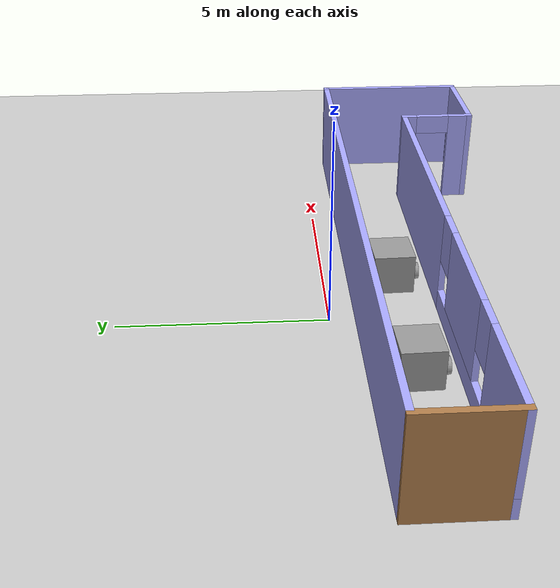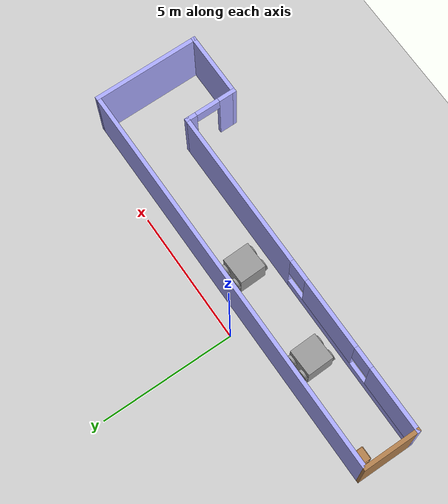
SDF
<sdf version="1.6">
 <world name="default">
  <plugin name="welcome_message" filename="libwelcome_message.so"/>
  <light name="sun" type="directional">
   <pose>0 0 10 0 -0 0</pose>
   <diffuse>0.8 0.8 0.8 1</diffuse>
   <specular>0.1 0.1 0.1 1</specular>
   <attenuation>
    <range>1000</range>
    <constant>0.9</constant>
    <linear>0.01</linear>
    <quadratic>0.001</quadratic>
   </attenuation>
   <direction>-0.5 0.5 -1</direction>
  </light>
  <model name="ground_plane">
   <static>1</static>
   <link name="link">
    <collision name="collision">
     <geometry><plane><normal>0 0 1</normal><size>100 100</size></plane></geometry>
     <surface><friction><ode><mu>100</mu><mu2>50</mu2></ode></friction></surface>
    </collision>
    <visual name="visual">
     <cast_shadows>0</cast_shadows>
     <geometry><plane><normal>0 0 1</normal><size>100 100</size></plane></geometry>
     <material>
      <script><uri>file://media/materials/scripts/gazebo.material</uri><name>Gazebo/Grey</name></script>
     </material>
    </visual>
   </link>
  </model>
  <gravity>0 0 -9.8</gravity>
  <magnetic_field>6e-06 2.3e-05 -4.2e-05</magnetic_field>
  <atmosphere type="adiabatic"/>
  <physics name="default_physics" default="0" type="ode">
   <max_step_size>0.001</max_step_size>
   <real_time_factor>1</real_time_factor>
   <real_time_update_rate>1000</real_time_update_rate>
  </physics>
  <scene><ambient>0.4 0.4 0.4 1</ambient><background>0.7 0.7 0.7 1</background><shadows>1</shadows></scene>
  <spherical_coordinates>
   <surface_model>EARTH_WGS84</surface_model>
   <latitude_deg>0</latitude_deg>
   <longitude_deg>0</longitude_deg>
   <elevation>0</elevation>
   <heading_deg>0</heading_deg>
  </spherical_coordinates>
  <model name="building">
   <pose>1.23203 -2.6019 0 0 -0 0</pose>
   <link name="Wall_0">
    <collision name="Wall_0_Collision">
     <geometry><box><size>15 0.15 2.5</size></box></geometry>
     <pose>0 0 1.25 0 -0 0</pose>
    </collision>
    <visual name="Wall_0_Visual">
     <pose>0 0 1.25 0 -0 0</pose>
     <geometry><box><size>15 0.15 2.5</size></box></geometry>
     <material>
      <script><uri>file://media/materials/scripts/gazebo.material</uri><name>Gazebo/Grey</name></script>
      <ambient>0.666667 0.666667 1 1</ambient>
     </material>
     <meta><layer>0</layer></meta>
    </visual>
    <pose>0.049935 1.925 0 0 -0 0</pose>
   </link>
   <link name="Wall_1">
    <collision name="Wall_1_Collision">
     <geometry><box><size>4 0.15 2.5</size></box></geometry>
     <pose>0 0 1.25 0 -0 0</pose>
    </collision>
    <visual name="Wall_1_Visual">
     <pose>0 0 1.25 0 -0 0</pose>
     <geometry><box><size>4 0.15 2.5</size></box></geometry>
     <material>
      <script><uri>file://media/materials/scripts/gazebo.material</uri><name>Gazebo/Grey</name></script>
      <ambient>0.666667 0.666667 1 1</ambient>
     </material>
     <meta><layer>0</layer></meta>
    </visual>
    <pose>7.47494 0 0 0 0 -1.5708</pose>
   </link>
   <link name="Wall_2">
    <collision name="Wall_2_Collision">
     <geometry><box><size>2.5 0.15 2.5</size></box></geometry>
     <pose>0 0 1.25 0 -0 0</pose>
    </collision>
    <visual name="Wall_2_Visual">
     <pose>0 0 1.25 0 -0 0</pose>
     <geometry><box><size>2.5 0.15 2.5</size></box></geometry>
     <material>
      <script><uri>file://media/materials/scripts/gazebo.material</uri><name>Gazebo/Grey</name></script>
      <ambient>0.666667 0.666667 1 1</ambient>
     </material>
     <meta><layer>0</layer></meta>
    </visual>
    <pose>6.29993 -1.925 0 0 -0 3.14159</pose>
   </link>
   <link name="Wall_3">
    <pose>5.12493 -1 0 0 -0 1.5708</pose>
    <visual name="Wall_3_Visual_0">
     <pose>-0.661705 0 1.25 0 -0 0</pose>
     <geometry><box><size>0.67659 0.15 2.5</size></box></geometry>
     <material>
      <script><uri>file://media/materials/scripts/gazebo.material</uri><name>Gazebo/Grey</name></script>
      <ambient>0.666667 0.666667 1 1</ambient>
     </material>
     <meta><layer>0</layer></meta>
    </visual>
    <collision name="Wall_3_Collision_0">
     <geometry><box><size>0.67659 0.15 2.5</size></box></geometry>
     <pose>-0.661705 0 1.25 0 -0 0</pose>
    </collision>
    <visual name="Wall_3_Visual_1">
     <pose>0.788295 0 1.25 0 -0 0</pose>
     <geometry><box><size>0.42341 0.15 2.5</size></box></geometry>
     <material>
      <script><uri>file://media/materials/scripts/gazebo.material</uri><name>Gazebo/Grey</name></script>
      <ambient>0.666667 0.666667 1 1</ambient>
     </material>
     <meta><layer>0</layer></meta>
    </visual>
    <collision name="Wall_3_Collision_1">
     <geometry><box><size>0.42341 0.15 2.5</size></box></geometry>
     <pose>0.788295 0 1.25 0 -0 0</pose>
    </collision>
    <visual name="Wall_3_Visual_2">
     <pose>0.12659 0 2.25 0 -0 0</pose>
     <geometry><box><size>0.9 0.15 0.5</size></box></geometry>
     <material>
      <script><uri>file://media/materials/scripts/gazebo.material</uri><name>Gazebo/Grey</name></script>
      <ambient>0.666667 0.666667 1 1</ambient>
     </material>
     <meta><layer>0</layer></meta>
    </visual>
    <collision name="Wall_3_Collision_2">
     <geometry><box><size>0.9 0.15 0.5</size></box></geometry>
     <pose>0.12659 0 2.25 0 -0 0</pose>
    </collision>
   </link>
   <link name="Wall_4">
    <pose>-1.17494 -0.075034 0 0 0 -3.14159</pose>
    <visual name="Wall_4_Visual_0">
     <pose>-3.352 0 1.25 0 -0 0</pose>
     <geometry><box><size>6.046 0.15 2.5</size></box></geometry>
     <material>
      <script><uri>file://media/materials/scripts/gazebo.material</uri><name>Gazebo/Grey</name></script>
      <ambient>0.666667 0.666667 1 1</ambient>
     </material>
     <meta><layer>0</layer></meta>
    </visual>
    <collision name="Wall_4_Collision_0">
     <geometry><box><size>6.046 0.15 2.5</size></box></geometry>
     <pose>-3.352 0 1.25 0 -0 0</pose>
    </collision>
    <visual name="Wall_4_Visual_1">
     <pose>3.023 0 0.25 0 -0 0</pose>
     <geometry><box><size>6.704 0.15 0.5</size></box></geometry>
     <material>
      <script><uri>file://media/materials/scripts/gazebo.material</uri><name>Gazebo/Grey</name></script>
      <ambient>0.666667 0.666667 1 1</ambient>
     </material>
     <meta><layer>0</layer></meta>
    </visual>
    <collision name="Wall_4_Collision_1">
     <geometry><box><size>6.704 0.15 0.5</size></box></geometry>
     <pose>3.023 0 0.25 0 -0 0</pose>
    </collision>
    <visual name="Wall_4_Visual_2">
     <pose>1.7972 0 1.5 0 -0 0</pose>
     <geometry><box><size>2.65239 0.15 2</size></box></geometry>
     <material>
      <script><uri>file://media/materials/scripts/gazebo.material</uri><name>Gazebo/Grey</name></script>
      <ambient>0.666667 0.666667 1 1</ambient>
     </material>
     <meta><layer>0</layer></meta>
    </visual>
    <collision name="Wall_4_Collision_2">
     <geometry><box><size>2.65239 0.15 2</size></box></geometry>
     <pose>1.7972 0 1.5 0 -0 0</pose>
    </collision>
    <visual name="Wall_4_Visual_3">
     <pose>5.14919 0 1.5 0 -0 0</pose>
     <geometry><box><size>2.45161 0.15 2</size></box></geometry>
     <material>
      <script><uri>file://media/materials/scripts/gazebo.material</uri><name>Gazebo/Grey</name></script>
      <ambient>0.666667 0.666667 1 1</ambient>
     </material>
     <meta><layer>0</layer></meta>
    </visual>
    <collision name="Wall_4_Collision_3">
     <geometry><box><size>2.45161 0.15 2</size></box></geometry>
     <pose>5.14919 0 1.5 0 -0 0</pose>
    </collision>
    <visual name="Wall_4_Visual_4">
     <pose>0.071004 0 1.9 0 -0 0</pose>
     <geometry><box><size>0.8 0.15 1.2</size></box></geometry>
     <material>
      <script><uri>file://media/materials/scripts/gazebo.material</uri><name>Gazebo/Grey</name></script>
      <ambient>0.666667 0.666667 1 1</ambient>
     </material>
     <meta><layer>0</layer></meta>
    </visual>
    <collision name="Wall_4_Collision_4">
     <geometry><box><size>0.8 0.15 1.2</size></box></geometry>
     <pose>0.071004 0 1.9 0 -0 0</pose>
    </collision>
    <visual name="Wall_4_Visual_5">
     <pose>3.52339 0 1.9 0 -0 0</pose>
     <geometry><box><size>0.8 0.15 1.2</size></box></geometry>
     <material>
      <script><uri>file://media/materials/scripts/gazebo.material</uri><name>Gazebo/Grey</name></script>
      <ambient>0.666667 0.666667 1 1</ambient>
     </material>
     <meta><layer>0</layer></meta>
    </visual>
    <collision name="Wall_4_Collision_5">
     <geometry><box><size>0.8 0.15 1.2</size></box></geometry>
     <pose>3.52339 0 1.9 0 -0 0</pose>
    </collision>
   </link>
   <link name="Wall_5">
    <collision name="Wall_5_Collision">
     <geometry><box><size>2.148 0.15 2.5</size></box></geometry>
     <pose>0 0 1.25 0 -0 0</pose>
    </collision>
    <visual name="Wall_5_Visual">
     <pose>0 0 1.25 0 -0 0</pose>
     <geometry><box><size>2.148 0.15 2.5</size></box></geometry>
     <material>
      <script><uri>file://media/materials/scripts/gazebo.material</uri><name>Gazebo/Wood</name></script>
      <ambient>1 1 1 1</ambient>
     </material>
     <meta><layer>0</layer></meta>
    </visual>
    <pose>-7.4748 0.923933 0 0 -0 1.5708</pose>
   </link>
   <static>1</static>
  </model>
  <model name="model">
   <link name="link_0">
    <inertial>
     <mass>1</mass>
     <inertia>
      <ixx>0.166667</ixx>
      <ixy>0</ixy>
      <ixz>0</ixz>
      <iyy>0.166667</iyy>
      <iyz>0</iyz>
      <izz>0.166667</izz>
     </inertia>
    </inertial>
    <visual name="visual">
     <geometry><box><size>1 1 1</size></box></geometry>
     <material>
      <lighting>1</lighting>
      <script><uri>file://media/materials/scripts/gazebo.material</uri><name>Gazebo/Grey</name></script>
      <shader type="pixel"><normal_map>__default__</normal_map></shader>
      <ambient>0.3 0.3 0.3 1</ambient>
      <diffuse>0.7 0.7 0.7 1</diffuse>
      <specular>0.01 0.01 0.01 1</specular>
      <emissive>0 0 0 1</emissive>
     </material>
    </visual>
    <collision name="collision">
     <geometry><box><size>1 1 1</size></box></geometry>
     <surface>
      <friction>
       <ode><mu>1</mu><mu2>1</mu2><fdir1>0 0 0</fdir1><slip1>0</slip1><slip2>0</slip2></ode>
       <torsional>
        <coefficient>1</coefficient>
        <patch_radius>0</patch_radius>
        <surface_radius>0</surface_radius>
        <use_patch_radius>1</use_patch_radius>
        <ode><slip>0</slip></ode>
       </torsional>
      </friction>
      <bounce><restitution_coefficient>0</restitution_coefficient><threshold>1e+06</threshold></bounce>
      <contact>
       <collide_without_contact>0</collide_without_contact>
       <collide_without_contact_bitmask>1</collide_without_contact_bitmask>
       <collide_bitmask>1</collide_bitmask>
       <ode>
        <soft_cfm>0</soft_cfm>
        <soft_erp>0.2</soft_erp>
        <kp>1e+13</kp>
        <kd>1</kd>
        <max_vel>0.01</max_vel>
        <min_depth>0</min_depth>
       </ode>
       <bullet>
        <split_impulse>1</split_impulse>
        <split_impulse_penetration_threshold>-0.01</split_impulse_penetration_threshold>
        <soft_cfm>0</soft_cfm>
        <soft_erp>0.2</soft_erp>
        <kp>1e+13</kp>
        <kd>1</kd>
       </bullet>
      </contact>
     </surface>
    </collision>
   </link>
   <link name="link_1">
    <pose>0.3 -0.550019 0 1.5707 -0 0</pose>
    <inertial>
     <mass>1</mass>
     <inertia><ixx>0.145833</ixx><ixy>0</ixy><ixz>0</ixz><iyy>0.145833</iyy><iyz>0</iyz><izz>0.125</izz></inertia>
    </inertial>
    <visual name="visual">
     <geometry><cylinder><radius>0.2</radius><length>0.1</length></cylinder></geometry>
     <material>
      <lighting>1</lighting>
      <script><uri>file://media/materials/scripts/gazebo.material</uri><name>Gazebo/Grey</name></script>
      <shader type="pixel"><normal_map>__default__</normal_map></shader>
      <ambient>0.3 0.3 0.3 1</ambient>
      <diffuse>0.7 0.7 0.7 1</diffuse>
      <specular>0.01 0.01 0.01 1</specular>
      <emissive>0 0 0 1</emissive>
     </material>
    </visual>
    <collision name="collision">
     <geometry><cylinder><radius>0.2</radius><length>0.1</length></cylinder></geometry>
     <surface>
      <friction>
       <ode><mu>1</mu><mu2>1</mu2><fdir1>0 0 0</fdir1><slip1>0</slip1><slip2>0</slip2></ode>
       <torsional>
        <coefficient>1</coefficient>
        <patch_radius>0</patch_radius>
        <surface_radius>0</surface_radius>
        <use_patch_radius>1</use_patch_radius>
        <ode><slip>0</slip></ode>
       </torsional>
      </friction>
      <bounce><restitution_coefficient>0</restitution_coefficient><threshold>1e+06</threshold></bounce>
      <contact>
       <collide_without_contact>0</collide_without_contact>
       <collide_without_contact_bitmask>1</collide_without_contact_bitmask>
       <collide_bitmask>1</collide_bitmask>
       <ode>
        <soft_cfm>0</soft_cfm>
        <soft_erp>0.2</soft_erp>
        <kp>1e+13</kp>
        <kd>1</kd>
        <max_vel>0.01</max_vel>
        <min_depth>0</min_depth>
       </ode>
       <bullet>
        <split_impulse>1</split_impulse>
        <split_impulse_penetration_threshold>-0.01</split_impulse_penetration_threshold>
        <soft_cfm>0</soft_cfm>
        <soft_erp>0.2</soft_erp>
        <kp>1e+13</kp>
        <kd>1</kd>
       </bullet>
      </contact>
     </surface>
    </collision>
   </link>
   <link name="link_1_clone">
    <pose>-0.3 -0.550019 0 1.5707 -0 0</pose>
    <inertial>
     <mass>1</mass>
     <inertia><ixx>0.145833</ixx><ixy>0</ixy><ixz>0</ixz><iyy>0.145833</iyy><iyz>0</iyz><izz>0.125</izz></inertia>
    </inertial>
    <visual name="visual">
     <geometry><cylinder><radius>0.2</radius><length>0.1</length></cylinder></geometry>
     <material>
      <lighting>1</lighting>
      <script><uri>file://media/materials/scripts/gazebo.material</uri><name>Gazebo/Grey</name></script>
      <shader type="pixel"><normal_map>__default__</normal_map></shader>
      <ambient>0.3 0.3 0.3 1</ambient>
      <diffuse>0.7 0.7 0.7 1</diffuse>
      <specular>0.01 0.01 0.01 1</specular>
      <emissive>0 0 0 1</emissive>
     </material>
    </visual>
    <collision name="collision">
     <geometry><cylinder><radius>0.2</radius><length>0.1</length></cylinder></geometry>
     <surface>
      <friction>
       <ode><mu>1</mu><mu2>1</mu2><fdir1>0 0 0</fdir1><slip1>0</slip1><slip2>0</slip2></ode>
       <torsional>
        <coefficient>1</coefficient>
        <patch_radius>0</patch_radius>
        <surface_radius>0</surface_radius>
        <use_patch_radius>1</use_patch_radius>
        <ode><slip>0</slip></ode>
       </torsional>
      </friction>
      <bounce><restitution_coefficient>0</restitution_coefficient><threshold>1e+06</threshold></bounce>
      <contact>
       <collide_without_contact>0</collide_without_contact>
       <collide_without_contact_bitmask>1</collide_without_contact_bitmask>
       <collide_bitmask>1</collide_bitmask>
       <ode>
        <soft_cfm>0</soft_cfm>
        <soft_erp>0.2</soft_erp>
        <kp>1e+13</kp>
        <kd>1</kd>
        <max_vel>0.01</max_vel>
        <min_depth>0</min_depth>
       </ode>
       <bullet>
        <split_impulse>1</split_impulse>
        <split_impulse_penetration_threshold>-0.01</split_impulse_penetration_threshold>
        <soft_cfm>0</soft_cfm>
        <soft_erp>0.2</soft_erp>
        <kp>1e+13</kp>
        <kd>1</kd>
       </bullet>
      </contact>
     </surface>
    </collision>
   </link>
   <link name="link_1_clone_0">
    <pose>-0.3 0.550019 0 1.5707 -0 0</pose>
    <inertial>
     <mass>1</mass>
     <inertia><ixx>0.145833</ixx><ixy>0</ixy><ixz>0</ixz><iyy>0.145833</iyy><iyz>0</iyz><izz>0.125</izz></inertia>
    </inertial>
    <visual name="visual">
     <geometry><cylinder><radius>0.2</radius><length>0.1</length></cylinder></geometry>
     <material>
      <lighting>1</lighting>
      <script><uri>file://media/materials/scripts/gazebo.material</uri><name>Gazebo/Grey</name></script>
      <shader type="pixel"><normal_map>__default__</normal_map></shader>
      <ambient>0.3 0.3 0.3 1</ambient>
      <diffuse>0.7 0.7 0.7 1</diffuse>
      <specular>0.01 0.01 0.01 1</specular>
      <emissive>0 0 0 1</emissive>
     </material>
    </visual>
    <collision name="collision">
     <geometry><cylinder><radius>0.2</radius><length>0.1</length></cylinder></geometry>
     <surface>
      <friction>
       <ode><mu>1</mu><mu2>1</mu2><fdir1>0 0 0</fdir1><slip1>0</slip1><slip2>0</slip2></ode>
       <torsional>
        <coefficient>1</coefficient>
        <patch_radius>0</patch_radius>
        <surface_radius>0</surface_radius>
        <use_patch_radius>1</use_patch_radius>
        <ode><slip>0</slip></ode>
       </torsional>
      </friction>
      <bounce><restitution_coefficient>0</restitution_coefficient><threshold>1e+06</threshold></bounce>
      <contact>
       <collide_without_contact>0</collide_without_contact>
       <collide_without_contact_bitmask>1</collide_without_contact_bitmask>
       <collide_bitmask>1</collide_bitmask>
       <ode>
        <soft_cfm>0</soft_cfm>
        <soft_erp>0.2</soft_erp>
        <kp>1e+13</kp>
        <kd>1</kd>
        <max_vel>0.01</max_vel>
        <min_depth>0</min_depth>
       </ode>
       <bullet>
        <split_impulse>1</split_impulse>
        <split_impulse_penetration_threshold>-0.01</split_impulse_penetration_threshold>
        <soft_cfm>0</soft_cfm>
        <soft_erp>0.2</soft_erp>
        <kp>1e+13</kp>
        <kd>1</kd>
       </bullet>
      </contact>
     </surface>
    </collision>
   </link>
   <link name="link_1_clone_1">
    <pose>0.3 0.550019 0 1.5707 -0 0</pose>
    <inertial>
     <mass>1</mass>
     <inertia><ixx>0.145833</ixx><ixy>0</ixy><ixz>0</ixz><iyy>0.145833</iyy><iyz>0</iyz><izz>0.125</izz></inertia>
    </inertial>
    <visual name="visual">
     <geometry><cylinder><radius>0.2</radius><length>0.1</length></cylinder></geometry>
     <material>
      <lighting>1</lighting>
      <script><uri>file://media/materials/scripts/gazebo.material</uri><name>Gazebo/Grey</name></script>
      <shader type="pixel"><normal_map>__default__</normal_map></shader>
      <ambient>0.3 0.3 0.3 1</ambient>
      <diffuse>0.7 0.7 0.7 1</diffuse>
      <specular>0.01 0.01 0.01 1</specular>
      <emissive>0 0 0 1</emissive>
     </material>
    </visual>
    <collision name="collision">
     <geometry><cylinder><radius>0.2</radius><length>0.1</length></cylinder></geometry>
     <surface>
      <friction>
       <ode><mu>1</mu><mu2>1</mu2><fdir1>0 0 0</fdir1><slip1>0</slip1><slip2>0</slip2></ode>
       <torsional>
        <coefficient>1</coefficient>
        <patch_radius>0</patch_radius>
        <surface_radius>0</surface_radius>
        <use_patch_radius>1</use_patch_radius>
        <ode><slip>0</slip></ode>
       </torsional>
      </friction>
      <bounce><restitution_coefficient>0</restitution_coefficient><threshold>1e+06</threshold></bounce>
      <contact>
       <collide_without_contact>0</collide_without_contact>
       <collide_without_contact_bitmask>1</collide_without_contact_bitmask>
       <collide_bitmask>1</collide_bitmask>
       <ode>
        <soft_cfm>0</soft_cfm>
        <soft_erp>0.2</soft_erp>
        <kp>1e+13</kp>
        <kd>1</kd>
        <max_vel>0.01</max_vel>
        <min_depth>0</min_depth>
       </ode>
       <bullet>
        <split_impulse>1</split_impulse>
        <split_impulse_penetration_threshold>-0.01</split_impulse_penetration_threshold>
        <soft_cfm>0</soft_cfm>
        <soft_erp>0.2</soft_erp>
        <kp>1e+13</kp>
        <kd>1</kd>
       </bullet>
      </contact>
     </surface>
    </collision>
   </link>
   <joint name="link_0_JOINT_0" type="revolute">
    <parent>link_0</parent>
    <child>link_1_clone</child>
    <axis>
     <xyz>0 0 1</xyz>
     <use_parent_model_frame>0</use_parent_model_frame>
     <limit>
      <lower>-1.79769e+308</lower>
      <upper>1.79769e+308</upper>
      <effort>-1</effort>
      <velocity>-1</velocity>
     </limit>
     <dynamics>
      <spring_reference>0</spring_reference>
      <spring_stiffness>0</spring_stiffness>
      <damping>0</damping>
     </dynamics>
    </axis>
    <physics>
     <ode><limit><cfm>0</cfm><erp>0.2</erp></limit><suspension><cfm>0</cfm><erp>0.2</erp></suspension></ode>
    </physics>
   </joint>
   <joint name="link_0_JOINT_1" type="revolute">
    <parent>link_0</parent>
    <child>link_1</child>
    <axis>
     <xyz>0 0 1</xyz>
     <use_parent_model_frame>0</use_parent_model_frame>
     <limit>
      <lower>-1.79769e+308</lower>
      <upper>1.79769e+308</upper>
      <effort>-1</effort>
      <velocity>-1</velocity>
     </limit>
     <dynamics>
      <spring_reference>0</spring_reference>
      <spring_stiffness>0</spring_stiffness>
      <damping>0</damping>
     </dynamics>
    </axis>
    <physics>
     <ode><limit><cfm>0</cfm><erp>0.2</erp></limit><suspension><cfm>0</cfm><erp>0.2</erp></suspension></ode>
    </physics>
   </joint>
   <joint name="link_0_JOINT_2" type="revolute">
    <parent>link_0</parent>
    <child>link_1_clone_0</child>
    <axis>
     <xyz>0 0 1</xyz>
     <use_parent_model_frame>0</use_parent_model_frame>
     <limit>
      <lower>-1.79769e+308</lower>
      <upper>1.79769e+308</upper>
      <effort>-1</effort>
      <velocity>-1</velocity>
     </limit>
     <dynamics>
      <spring_reference>0</spring_reference>
      <spring_stiffness>0</spring_stiffness>
      <damping>0</damping>
     </dynamics>
    </axis>
    <physics>
     <ode><limit><cfm>0</cfm><erp>0.2</erp></limit><suspension><cfm>0</cfm><erp>0.2</erp></suspension></ode>
    </physics>
   </joint>
   <joint name="link_0_JOINT_3" type="revolute">
    <parent>link_0</parent>
    <child>link_1_clone_1</child>
    <axis>
     <xyz>0 0 1</xyz>
     <use_parent_model_frame>0</use_parent_model_frame>
     <limit>
      <lower>-1.79769e+308</lower>
      <upper>1.79769e+308</upper>
      <effort>-1</effort>
      <velocity>-1</velocity>
     </limit>
     <dynamics>
      <spring_reference>0</spring_reference>
      <spring_stiffness>0</spring_stiffness>
      <damping>0</damping>
     </dynamics>
    </axis>
    <physics>
     <ode><limit><cfm>0</cfm><erp>0.2</erp></limit><suspension><cfm>0</cfm><erp>0.2</erp></suspension></ode>
    </physics>
   </joint>
   <static>0</static>
   <pose>-2.20767 -1.68149 0.499996 -0 -8e-06 0.029771</pose>
  </model>
  <model name="model_0">
   <link name="link_0">
    <inertial>
     <mass>1</mass>
     <inertia>
      <ixx>0.166667</ixx>
      <ixy>0</ixy>
      <ixz>0</ixz>
      <iyy>0.166667</iyy>
      <iyz>0</iyz>
      <izz>0.166667</izz>
     </inertia>
    </inertial>
    <visual name="visual">
     <geometry><box><size>1 1 1</size></box></geometry>
     <material>
      <lighting>1</lighting>
      <script><uri>file://media/materials/scripts/gazebo.material</uri><name>Gazebo/Grey</name></script>
      <shader type="pixel"><normal_map>__default__</normal_map></shader>
      <ambient>0.3 0.3 0.3 1</ambient>
      <diffuse>0.7 0.7 0.7 1</diffuse>
      <specular>0.01 0.01 0.01 1</specular>
      <emissive>0 0 0 1</emissive>
     </material>
    </visual>
    <collision name="collision">
     <geometry><box><size>1 1 1</size></box></geometry>
     <surface>
      <friction>
       <ode><mu>1</mu><mu2>1</mu2><fdir1>0 0 0</fdir1><slip1>0</slip1><slip2>0</slip2></ode>
       <torsional>
        <coefficient>1</coefficient>
        <patch_radius>0</patch_radius>
        <surface_radius>0</surface_radius>
        <use_patch_radius>1</use_patch_radius>
        <ode><slip>0</slip></ode>
       </torsional>
      </friction>
      <bounce><restitution_coefficient>0</restitution_coefficient><threshold>1e+06</threshold></bounce>
      <contact>
       <collide_without_contact>0</collide_without_contact>
       <collide_without_contact_bitmask>1</collide_without_contact_bitmask>
       <collide_bitmask>1</collide_bitmask>
       <ode>
        <soft_cfm>0</soft_cfm>
        <soft_erp>0.2</soft_erp>
        <kp>1e+13</kp>
        <kd>1</kd>
        <max_vel>0.01</max_vel>
        <min_depth>0</min_depth>
       </ode>
       <bullet>
        <split_impulse>1</split_impulse>
        <split_impulse_penetration_threshold>-0.01</split_impulse_penetration_threshold>
        <soft_cfm>0</soft_cfm>
        <soft_erp>0.2</soft_erp>
        <kp>1e+13</kp>
        <kd>1</kd>
       </bullet>
      </contact>
     </surface>
    </collision>
   </link>
   <link name="link_1">
    <pose>0.3 -0.550019 0 1.5707 -0 0</pose>
    <inertial>
     <mass>1</mass>
     <inertia><ixx>0.145833</ixx><ixy>0</ixy><ixz>0</ixz><iyy>0.145833</iyy><iyz>0</iyz><izz>0.125</izz></inertia>
    </inertial>
    <visual name="visual">
     <geometry><cylinder><radius>0.2</radius><length>0.1</length></cylinder></geometry>
     <material>
      <lighting>1</lighting>
      <script><uri>file://media/materials/scripts/gazebo.material</uri><name>Gazebo/Grey</name></script>
      <shader type="pixel"><normal_map>__default__</normal_map></shader>
      <ambient>0.3 0.3 0.3 1</ambient>
      <diffuse>0.7 0.7 0.7 1</diffuse>
      <specular>0.01 0.01 0.01 1</specular>
      <emissive>0 0 0 1</emissive>
     </material>
    </visual>
    <collision name="collision">
     <geometry><cylinder><radius>0.2</radius><length>0.1</length></cylinder></geometry>
     <surface>
      <friction>
       <ode><mu>1</mu><mu2>1</mu2><fdir1>0 0 0</fdir1><slip1>0</slip1><slip2>0</slip2></ode>
       <torsional>
        <coefficient>1</coefficient>
        <patch_radius>0</patch_radius>
        <surface_radius>0</surface_radius>
        <use_patch_radius>1</use_patch_radius>
        <ode><slip>0</slip></ode>
       </torsional>
      </friction>
      <bounce><restitution_coefficient>0</restitution_coefficient><threshold>1e+06</threshold></bounce>
      <contact>
       <collide_without_contact>0</collide_without_contact>
       <collide_without_contact_bitmask>1</collide_without_contact_bitmask>
       <collide_bitmask>1</collide_bitmask>
       <ode>
        <soft_cfm>0</soft_cfm>
        <soft_erp>0.2</soft_erp>
        <kp>1e+13</kp>
        <kd>1</kd>
        <max_vel>0.01</max_vel>
        <min_depth>0</min_depth>
       </ode>
       <bullet>
        <split_impulse>1</split_impulse>
        <split_impulse_penetration_threshold>-0.01</split_impulse_penetration_threshold>
        <soft_cfm>0</soft_cfm>
        <soft_erp>0.2</soft_erp>
        <kp>1e+13</kp>
        <kd>1</kd>
       </bullet>
      </contact>
     </surface>
    </collision>
   </link>
   <link name="link_1_clone">
    <pose>-0.3 -0.550019 0 1.5707 -0 0</pose>
    <inertial>
     <mass>1</mass>
     <inertia><ixx>0.145833</ixx><ixy>0</ixy><ixz>0</ixz><iyy>0.145833</iyy><iyz>0</iyz><izz>0.125</izz></inertia>
    </inertial>
    <visual name="visual">
     <geometry><cylinder><radius>0.2</radius><length>0.1</length></cylinder></geometry>
     <material>
      <lighting>1</lighting>
      <script><uri>file://media/materials/scripts/gazebo.material</uri><name>Gazebo/Grey</name></script>
      <shader type="pixel"><normal_map>__default__</normal_map></shader>
      <ambient>0.3 0.3 0.3 1</ambient>
      <diffuse>0.7 0.7 0.7 1</diffuse>
      <specular>0.01 0.01 0.01 1</specular>
      <emissive>0 0 0 1</emissive>
     </material>
    </visual>
    <collision name="collision">
     <geometry><cylinder><radius>0.2</radius><length>0.1</length></cylinder></geometry>
     <surface>
      <friction>
       <ode><mu>1</mu><mu2>1</mu2><fdir1>0 0 0</fdir1><slip1>0</slip1><slip2>0</slip2></ode>
       <torsional>
        <coefficient>1</coefficient>
        <patch_radius>0</patch_radius>
        <surface_radius>0</surface_radius>
        <use_patch_radius>1</use_patch_radius>
        <ode><slip>0</slip></ode>
       </torsional>
      </friction>
      <bounce><restitution_coefficient>0</restitution_coefficient><threshold>1e+06</threshold></bounce>
      <contact>
       <collide_without_contact>0</collide_without_contact>
       <collide_without_contact_bitmask>1</collide_without_contact_bitmask>
       <collide_bitmask>1</collide_bitmask>
       <ode>
        <soft_cfm>0</soft_cfm>
        <soft_erp>0.2</soft_erp>
        <kp>1e+13</kp>
        <kd>1</kd>
        <max_vel>0.01</max_vel>
        <min_depth>0</min_depth>
       </ode>
       <bullet>
        <split_impulse>1</split_impulse>
        <split_impulse_penetration_threshold>-0.01</split_impulse_penetration_threshold>
        <soft_cfm>0</soft_cfm>
        <soft_erp>0.2</soft_erp>
        <kp>1e+13</kp>
        <kd>1</kd>
       </bullet>
      </contact>
     </surface>
    </collision>
   </link>
   <link name="link_1_clone_0">
    <pose>-0.3 0.550019 0 1.5707 -0 0</pose>
    <inertial>
     <mass>1</mass>
     <inertia><ixx>0.145833</ixx><ixy>0</ixy><ixz>0</ixz><iyy>0.145833</iyy><iyz>0</iyz><izz>0.125</izz></inertia>
    </inertial>
    <visual name="visual">
     <geometry><cylinder><radius>0.2</radius><length>0.1</length></cylinder></geometry>
     <material>
      <lighting>1</lighting>
      <script><uri>file://media/materials/scripts/gazebo.material</uri><name>Gazebo/Grey</name></script>
      <shader type="pixel"><normal_map>__default__</normal_map></shader>
      <ambient>0.3 0.3 0.3 1</ambient>
      <diffuse>0.7 0.7 0.7 1</diffuse>
      <specular>0.01 0.01 0.01 1</specular>
      <emissive>0 0 0 1</emissive>
     </material>
    </visual>
    <collision name="collision">
     <geometry><cylinder><radius>0.2</radius><length>0.1</length></cylinder></geometry>
     <surface>
      <friction>
       <ode><mu>1</mu><mu2>1</mu2><fdir1>0 0 0</fdir1><slip1>0</slip1><slip2>0</slip2></ode>
       <torsional>
        <coefficient>1</coefficient>
        <patch_radius>0</patch_radius>
        <surface_radius>0</surface_radius>
        <use_patch_radius>1</use_patch_radius>
        <ode><slip>0</slip></ode>
       </torsional>
      </friction>
      <bounce><restitution_coefficient>0</restitution_coefficient><threshold>1e+06</threshold></bounce>
      <contact>
       <collide_without_contact>0</collide_without_contact>
       <collide_without_contact_bitmask>1</collide_without_contact_bitmask>
       <collide_bitmask>1</collide_bitmask>
       <ode>
        <soft_cfm>0</soft_cfm>
        <soft_erp>0.2</soft_erp>
        <kp>1e+13</kp>
        <kd>1</kd>
        <max_vel>0.01</max_vel>
        <min_depth>0</min_depth>
       </ode>
       <bullet>
        <split_impulse>1</split_impulse>
        <split_impulse_penetration_threshold>-0.01</split_impulse_penetration_threshold>
        <soft_cfm>0</soft_cfm>
        <soft_erp>0.2</soft_erp>
        <kp>1e+13</kp>
        <kd>1</kd>
       </bullet>
      </contact>
     </surface>
    </collision>
   </link>
   <link name="link_1_clone_1">
    <pose>0.3 0.550019 0 1.5707 -0 0</pose>
    <inertial>
     <mass>1</mass>
     <inertia><ixx>0.145833</ixx><ixy>0</ixy><ixz>0</ixz><iyy>0.145833</iyy><iyz>0</iyz><izz>0.125</izz></inertia>
    </inertial>
    <visual name="visual">
     <geometry><cylinder><radius>0.2</radius><length>0.1</length></cylinder></geometry>
     <material>
      <lighting>1</lighting>
      <script><uri>file://media/materials/scripts/gazebo.material</uri><name>Gazebo/Grey</name></script>
      <shader type="pixel"><normal_map>__default__</normal_map></shader>
      <ambient>0.3 0.3 0.3 1</ambient>
      <diffuse>0.7 0.7 0.7 1</diffuse>
      <specular>0.01 0.01 0.01 1</specular>
      <emissive>0 0 0 1</emissive>
     </material>
    </visual>
    <collision name="collision">
     <geometry><cylinder><radius>0.2</radius><length>0.1</length></cylinder></geometry>
     <surface>
      <friction>
       <ode><mu>1</mu><mu2>1</mu2><fdir1>0 0 0</fdir1><slip1>0</slip1><slip2>0</slip2></ode>
       <torsional>
        <coefficient>1</coefficient>
        <patch_radius>0</patch_radius>
        <surface_radius>0</surface_radius>
        <use_patch_radius>1</use_patch_radius>
        <ode><slip>0</slip></ode>
       </torsional>
      </friction>
      <bounce><restitution_coefficient>0</restitution_coefficient><threshold>1e+06</threshold></bounce>
      <contact>
       <collide_without_contact>0</collide_without_contact>
       <collide_without_contact_bitmask>1</collide_without_contact_bitmask>
       <collide_bitmask>1</collide_bitmask>
       <ode>
        <soft_cfm>0</soft_cfm>
        <soft_erp>0.2</soft_erp>
        <kp>1e+13</kp>
        <kd>1</kd>
        <max_vel>0.01</max_vel>
        <min_depth>0</min_depth>
       </ode>
       <bullet>
        <split_impulse>1</split_impulse>
        <split_impulse_penetration_threshold>-0.01</split_impulse_penetration_threshold>
        <soft_cfm>0</soft_cfm>
        <soft_erp>0.2</soft_erp>
        <kp>1e+13</kp>
        <kd>1</kd>
       </bullet>
      </contact>
     </surface>
    </collision>
   </link>
   <joint name="link_0_JOINT_0" type="revolute">
    <parent>link_0</parent>
    <child>link_1_clone</child>
    <axis>
     <xyz>0 0 1</xyz>
     <use_parent_model_frame>0</use_parent_model_frame>
     <limit>
      <lower>-1.79769e+308</lower>
      <upper>1.79769e+308</upper>
      <effort>-1</effort>
      <velocity>-1</velocity>
     </limit>
     <dynamics>
      <spring_reference>0</spring_reference>
      <spring_stiffness>0</spring_stiffness>
      <damping>0</damping>
     </dynamics>
    </axis>
    <physics>
     <ode><limit><cfm>0</cfm><erp>0.2</erp></limit><suspension><cfm>0</cfm><erp>0.2</erp></suspension></ode>
    </physics>
   </joint>
   <joint name="link_0_JOINT_1" type="revolute">
    <parent>link_0</parent>
    <child>link_1</child>
    <axis>
     <xyz>0 0 1</xyz>
     <use_parent_model_frame>0</use_parent_model_frame>
     <limit>
      <lower>-1.79769e+308</lower>
      <upper>1.79769e+308</upper>
      <effort>-1</effort>
      <velocity>-1</velocity>
     </limit>
     <dynamics>
      <spring_reference>0</spring_reference>
      <spring_stiffness>0</spring_stiffness>
      <damping>0</damping>
     </dynamics>
    </axis>
    <physics>
     <ode><limit><cfm>0</cfm><erp>0.2</erp></limit><suspension><cfm>0</cfm><erp>0.2</erp></suspension></ode>
    </physics>
   </joint>
   <joint name="link_0_JOINT_2" type="revolute">
    <parent>link_0</parent>
    <child>link_1_clone_0</child>
    <axis>
     <xyz>0 0 1</xyz>
     <use_parent_model_frame>0</use_parent_model_frame>
     <limit>
      <lower>-1.79769e+308</lower>
      <upper>1.79769e+308</upper>
      <effort>-1</effort>
      <velocity>-1</velocity>
     </limit>
     <dynamics>
      <spring_reference>0</spring_reference>
      <spring_stiffness>0</spring_stiffness>
      <damping>0</damping>
     </dynamics>
    </axis>
    <physics>
     <ode><limit><cfm>0</cfm><erp>0.2</erp></limit><suspension><cfm>0</cfm><erp>0.2</erp></suspension></ode>
    </physics>
   </joint>
   <joint name="link_0_JOINT_3" type="revolute">
    <parent>link_0</parent>
    <child>link_1_clone_1</child>
    <axis>
     <xyz>0 0 1</xyz>
     <use_parent_model_frame>0</use_parent_model_frame>
     <limit>
      <lower>-1.79769e+308</lower>
      <upper>1.79769e+308</upper>
      <effort>-1</effort>
      <velocity>-1</velocity>
     </limit>
     <dynamics>
      <spring_reference>0</spring_reference>
      <spring_stiffness>0</spring_stiffness>
      <damping>0</damping>
     </dynamics>
    </axis>
    <physics>
     <ode><limit><cfm>0</cfm><erp>0.2</erp></limit><suspension><cfm>0</cfm><erp>0.2</erp></suspension></ode>
    </physics>
   </joint>
   <static>0</static>
   <pose>1.58408 -1.66594 0.5 0 1e-06 0.028955</pose>
  </model>
  <model name="cabinet">
   <static>1</static>
   <link name="cabinet_bottom_plate">
    <inertial>
     <pose>0 0 -1 0 -0 0</pose>
     <inertia><ixx>2.05</ixx><ixy>0</ixy><ixz>0</ixz><iyy>2.05</iyy><iyz>0</iyz><izz>2.05</izz></inertia>
     <mass>25</mass>
    </inertial>
    <collision name="cabinet_bottom_plate_geom">
     <pose>0 0 0.01 0 -0 0</pose>
     <geometry><box><size>0.45 0.45 0.02</size></box></geometry>
    </collision>
    <visual name="cabinet_bottom_plate_geom_visual">
     <pose>0 0 0.01 0 -0 0</pose>
     <geometry><box><size>0.45 0.45 0.02</size></box></geometry>
     <material>
      <script><uri>file://media/materials/scripts/gazebo.material</uri><name>Gazebo/Wood</name></script>
     </material>
    </visual>
    <collision name="cabinet_bottom_plate_geom_cabinet_back_plate">
     <pose>0.235 0 0.51 0 -0 0</pose>
     <geometry><box><size>0.02 0.45 1.02</size></box></geometry>
    </collision>
    <visual name="cabinet_bottom_plate_geom_cabinet_back_plate_visual">
     <pose>0.235 0 0.51 0 -0 0</pose>
     <geometry><box><size>0.02 0.45 1.02</size></box></geometry>
     <material>
      <script><uri>file://media/materials/scripts/gazebo.material</uri><name>Gazebo/Wood</name></script>
     </material>
    </visual>
    <collision name="cabinet_bottom_plate_geom_cabinet_left_plate">
     <pose>0 0.235 0.51 0 -0 0</pose>
     <geometry><box><size>0.45 0.02 1.02</size></box></geometry>
    </collision>
    <visual name="cabinet_bottom_plate_geom_cabinet_left_plate_visual">
     <pose>0 0.235 0.51 0 -0 0</pose>
     <geometry><box><size>0.45 0.02 1.02</size></box></geometry>
     <material>
      <script><uri>file://media/materials/scripts/gazebo.material</uri><name>Gazebo/Wood</name></script>
     </material>
    </visual>
    <collision name="cabinet_bottom_plate_geom_cabinet_middle_plate">
     <pose>0 0 0.51 0 -0 0</pose>
     <geometry><box><size>0.45 0.45 0.02</size></box></geometry>
    </collision>
    <visual name="cabinet_bottom_plate_geom_cabinet_middle_plate_visual">
     <pose>0 0 0.51 0 -0 0</pose>
     <geometry><box><size>0.45 0.45 0.02</size></box></geometry>
     <material>
      <script><uri>file://media/materials/scripts/gazebo.material</uri><name>Gazebo/Wood</name></script>
     </material>
    </visual>
    <collision name="cabinet_bottom_plate_geom_cabinet_right_plate">
     <pose>0 -0.235 0.51 0 -0 0</pose>
     <geometry><box><size>0.45 0.02 1.02</size></box></geometry>
    </collision>
    <visual name="cabinet_bottom_plate_geom_cabinet_right_plate_visual">
     <pose>0 -0.235 0.51 0 -0 0</pose>
     <geometry><box><size>0.45 0.02 1.02</size></box></geometry>
     <material>
      <script><uri>file://media/materials/scripts/gazebo.material</uri><name>Gazebo/Wood</name></script>
     </material>
    </visual>
    <collision name="cabinet_bottom_plate_geom_cabinet_top_plate">
     <pose>0 0 1.01 0 -0 0</pose>
     <geometry><box><size>0.45 0.45 0.02</size></box></geometry>
    </collision>
    <visual name="cabinet_bottom_plate_geom_cabinet_top_plate_visual">
     <pose>0 0 1.01 0 -0 0</pose>
     <geometry><box><size>0.45 0.45 0.02</size></box></geometry>
     <material>
      <script><uri>file://media/materials/scripts/gazebo.material</uri><name>Gazebo/Wood</name></script>
     </material>
    </visual>
   </link>
   <pose>-5.77641 -1.00557 0 0 -0 0</pose>
  </model>
 </world>
</sdf>
